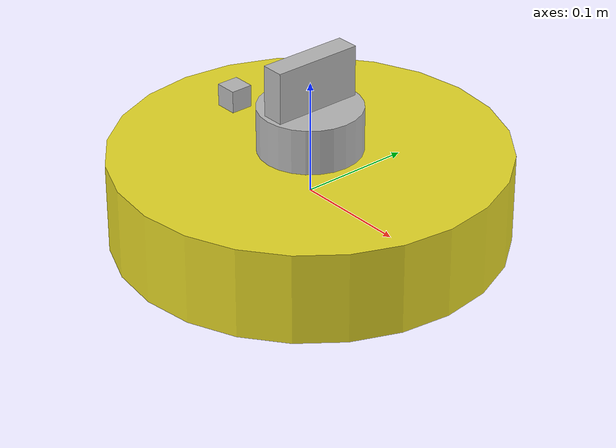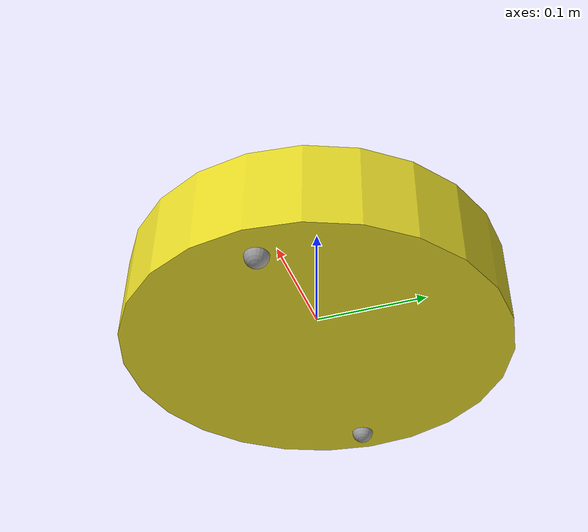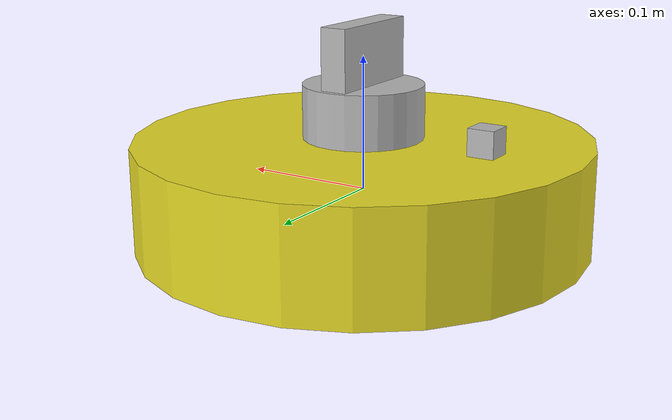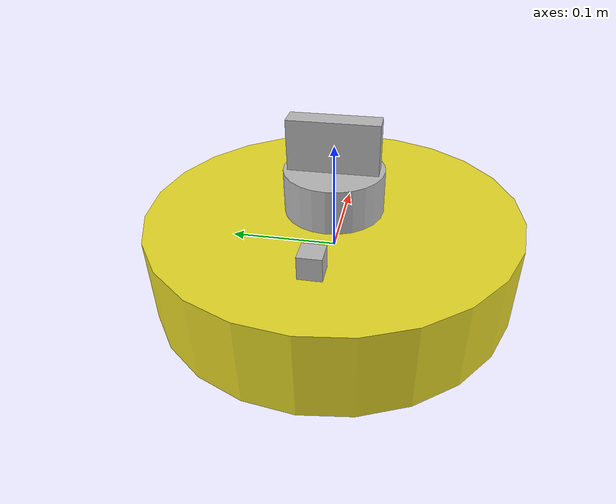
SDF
<sdf version='1.7'>
  <model name='iRobot'>
    <link name='base_link'>
      <inertial>
        <pose>-1e-05 0 6e-06 0 -0 0</pose>
        <mass>10.0031</mass>
        <inertia>
          <ixx>0.0802549</ixx>
          <ixy>0</ixy>
          <ixz>4.99939e-06</ixz>
          <iyy>0.0802648</iyy>
          <iyz>-1.94753e-23</iyz>
          <izz>0.144511</izz>
        </inertia>
      </inertial>
      <collision name='base_link_fixed_joint_lump__chassis_collision'>
        <pose>0 0 0 0 -0 0</pose>
        <geometry>
          <cylinder>
            <length>0.08</length>
            <radius>0.17</radius>
          </cylinder>
        </geometry>
        <surface>
          <contact>
            <ode/>
          </contact>
          <friction>
            <ode/>
          </friction>
        </surface>
      </collision>
      <collision name='base_link_fixed_joint_lump__left_axis_collision_1'>
        <pose>0 0 0 -1.5708 0 0</pose>
        <geometry>
          <cylinder>
            <length>0.02</length>
            <radius>0.0025</radius>
          </cylinder>
        </geometry>
      </collision>
      <collision name='base_link_fixed_joint_lump__right_axis_collision_2'>
        <pose>0 0 0 -1.5708 0 0</pose>
        <geometry>
          <cylinder>
            <length>0.02</length>
            <radius>0.0025</radius>
          </cylinder>
        </geometry>
      </collision>
      <collision name='base_link_fixed_joint_lump__camera_link_collision_3'>
        <pose>0 0 0.1 0 -0 0</pose>
        <geometry>
          <box>
            <size>0.02 0.08 0.05</size>
          </box>
        </geometry>
        <surface>
          <contact>
            <ode/>
          </contact>
          <friction>
            <ode/>
          </friction>
        </surface>
      </collision>
      <collision name='base_link_fixed_joint_lump__hokuyo_laser_link_collision_4'>
        <pose>0 0 0.06 0 -0 0</pose>
        <geometry>
          <cylinder>
            <length>0.04</length>
            <radius>0.045</radius>
          </cylinder>
        </geometry>
        <surface>
          <contact>
            <ode/>
          </contact>
          <friction>
            <ode/>
          </friction>
        </surface>
      </collision>
      <collision name='base_link_fixed_joint_lump__imu_sensor_link_collision_5'>
        <pose>-0.1 0 0.05 0 -0 0</pose>
        <geometry>
          <box>
            <size>0.02 0.02 0.02</size>
          </box>
        </geometry>
        <surface>
          <contact>
            <ode/>
          </contact>
          <friction>
            <ode/>
          </friction>
        </surface>
      </collision>
      <visual name='base_link_fixed_joint_lump__chassis_visual'>
        <pose>0 0 0 0 -0 0</pose>
        <geometry>
          <cylinder>
            <length>0.08</length>
            <radius>0.17</radius>
          </cylinder>
        </geometry>
        <material>
          <script>
            <name>Gazebo/Yellow</name>
            <uri>file://media/materials/scripts/gazebo.material</uri>
          </script>
        </material>
      </visual>
      <visual name='base_link_fixed_joint_lump__left_axis_visual_1'>
        <pose>0 0 0 -1.5708 0 0</pose>
        <geometry>
          <cylinder>
            <length>0.02</length>
            <radius>0.0025</radius>
          </cylinder>
        </geometry>
      </visual>
      <visual name='base_link_fixed_joint_lump__right_axis_visual_2'>
        <pose>0 0 0 -1.5708 0 0</pose>
        <geometry>
          <cylinder>
            <length>0.02</length>
            <radius>0.0025</radius>
          </cylinder>
        </geometry>
      </visual>
      <visual name='base_link_fixed_joint_lump__camera_link_visual_3'>
        <pose>0 0 0.1 0 -0 0</pose>
        <geometry>
          <box>
            <size>0.02 0.08 0.05</size>
          </box>
        </geometry>
      </visual>
      <visual name='base_link_fixed_joint_lump__hokuyo_laser_link_visual_4'>
        <pose>0 0 0.06 0 -0 0</pose>
        <geometry>
          <cylinder>
            <length>0.04</length>
            <radius>0.045</radius>
          </cylinder>
        </geometry>
      </visual>
      <visual name='base_link_fixed_joint_lump__imu_sensor_link_visual_5'>
        <pose>-0.1 0 0.05 0 -0 0</pose>
        <geometry>
          <box>
            <size>0.02 0.02 0.02</size>
          </box>
        </geometry>
      </visual>
      <gravity>1</gravity>
      <sensor name='camera' type='camera'>
        <update_rate>30</update_rate>
        <camera name='head'>
          <horizontal_fov>1.39626</horizontal_fov>
          <image>
            <width>800</width>
            <height>600</height>
            <format>R8G8B8</format>
          </image>
          <clip>
            <near>0.02</near>
            <far>300</far>
          </clip>
          <noise>
            <type>gaussian</type>
            <mean>0</mean>
            <stddev>0.007</stddev>
          </noise>
        </camera>
        <plugin name='camera_controller' filename='libgazebo_ros_camera.so'>
          <alwaysOn>1</alwaysOn>
          <updateRate>0.0</updateRate>
          <cameraName>iRobot/camera</cameraName>
          <imageTopicName>image_raw</imageTopicName>
          <cameraInfoTopicName>camera_info</cameraInfoTopicName>
          <frameName>camera_link</frameName>
          <hackBaseline>0.07</hackBaseline>
          <distortionK1>0.0</distortionK1>
          <distortionK2>0.0</distortionK2>
          <distortionK3>0.0</distortionK3>
          <distortionT1>0.0</distortionT1>
          <distortionT2>0.0</distortionT2>
        </plugin>
        <pose>0 0 0.1 0 -0 0</pose>
      </sensor>
      <gravity>1</gravity>
      <sensor name='head_hokuyo_sensor' type='ray'>
        <visualize>1</visualize>
        <update_rate>40</update_rate>
        <ray>
          <scan>
            <horizontal>
              <samples>360</samples>
              <resolution>1</resolution>
              <min_angle>-3.14159</min_angle>
              <max_angle>3.14159</max_angle>
            </horizontal>
          </scan>
          <range>
            <min>0.2</min>
            <max>40</max>
            <resolution>0.025</resolution>
          </range>
          <noise>
            <type>gaussian</type>
            <mean>0</mean>
            <stddev>0</stddev>
          </noise>
        </ray>
        <plugin name='gazebo_ros_head_hokuyo_controller' filename='libgazebo_ros_laser.so'>
          <robotNamespace/>
          <topicName>laser_scan</topicName>
          <frameName>hokuyo_laser_link</frameName>
        </plugin>
        <pose>0 0 0.06 0 -0 0</pose>
      </sensor>
      <gravity>1</gravity>
      <sensor name='imu_sensor' type='imu'>
        <always_on>1</always_on>
        <update_rate>1000</update_rate>
        <visualize>1</visualize>
        <topic>__default_topic__</topic>
        <plugin name='imu_plugin' filename='libgazebo_ros_imu_sensor.so'>
          <topicName>imu_data</topicName>
          <bodyName>imu_sensor_link</bodyName>
          <updateRateHZ>10.0</updateRateHZ>
          <gaussianNoise>0.0</gaussianNoise>
          <xyzOffset>0 0 0</xyzOffset>
          <rpyOffset>0 0 0</rpyOffset>
        </plugin>
        <pose>-0.1 0 0.05 0 -0 0</pose>
      </sensor>
    </link>
    <joint name='left_wheel_rot_joint' type='revolute'>
      <pose relative_to='base_link'>0 0 0 0 -0 0</pose>
      <parent>base_link</parent>
      <child>left_wheel_link</child>
      <axis>
        <xyz>0 1 0</xyz>
        <limit>
          <effort>100</effort>
          <velocity>100</velocity>
          <lower>-1e+16</lower>
          <upper>1e+16</upper>
        </limit>
        <dynamics>
          <spring_reference>0</spring_reference>
          <spring_stiffness>0</spring_stiffness>
        </dynamics>
      </axis>
    </joint>
    <link name='left_wheel_link'>
      <pose relative_to='left_wheel_rot_joint'>0 0 0 0 -0 0</pose>
      <inertial>
        <pose>0 0.01 0 -1.5708 0 0</pose>
        <mass>0.5</mass>
        <inertia>
          <ixx>0.000129167</ixx>
          <ixy>0</ixy>
          <ixz>0</ixz>
          <iyy>0.000129167</iyy>
          <iyz>0</iyz>
          <izz>3.75e-05</izz>
        </inertia>
      </inertial>
      <collision name='left_wheel_link_collision'>
        <pose>0 0 0 -1.5708 0 0</pose>
        <geometry>
          <cylinder>
            <length>0.02</length>
            <radius>0.03</radius>
          </cylinder>
        </geometry>
        <surface>
          <contact>
            <ode>
              <kp>1e+07</kp>
              <kd>1</kd>
              <min_depth>0.0001</min_depth>
            </ode>
          </contact>
          <friction>
            <ode>
              <mu>50</mu>
              <mu2>10</mu2>
              <fdir1>1 0 0</fdir1>
            </ode>
          </friction>
        </surface>
        <max_contacts>1</max_contacts>
      </collision>
      <visual name='left_wheel_link_visual'>
        <pose>0 0 0 -1.5708 0 0</pose>
        <geometry>
          <cylinder>
            <length>0.02</length>
            <radius>0.03</radius>
          </cylinder>
        </geometry>
        <material>
          <script>
            <name>Gazebo/Grey</name>
            <uri>file://media/materials/scripts/gazebo.material</uri>
          </script>
        </material>
      </visual>
      <gravity>1</gravity>
    </link>
    <joint name='right_wheel_rot_joint' type='revolute'>
      <pose relative_to='base_link'>0 0 0 0 -0 0</pose>
      <parent>base_link</parent>
      <child>right_wheel_link</child>
      <axis>
        <xyz>0 1 0</xyz>
        <limit>
          <effort>100</effort>
          <velocity>100</velocity>
          <lower>-1e+16</lower>
          <upper>1e+16</upper>
        </limit>
        <dynamics>
          <spring_reference>0</spring_reference>
          <spring_stiffness>0</spring_stiffness>
        </dynamics>
      </axis>
    </joint>
    <link name='right_wheel_link'>
      <pose relative_to='right_wheel_rot_joint'>0 0 0 0 -0 0</pose>
      <inertial>
        <pose>0 0.01 0 -1.5708 0 0</pose>
        <mass>0.5</mass>
        <inertia>
          <ixx>0.000129167</ixx>
          <ixy>0</ixy>
          <ixz>0</ixz>
          <iyy>0.000129167</iyy>
          <iyz>0</iyz>
          <izz>3.75e-05</izz>
        </inertia>
      </inertial>
      <collision name='right_wheel_link_collision'>
        <pose>0 0 0 -1.5708 0 0</pose>
        <geometry>
          <cylinder>
            <length>0.02</length>
            <radius>0.03</radius>
          </cylinder>
        </geometry>
        <surface>
          <contact>
            <ode>
              <kp>1e+07</kp>
              <kd>1</kd>
              <min_depth>0.0001</min_depth>
            </ode>
          </contact>
          <friction>
            <ode>
              <mu>50</mu>
              <mu2>10</mu2>
              <fdir1>1 0 0</fdir1>
            </ode>
          </friction>
        </surface>
        <max_contacts>1</max_contacts>
      </collision>
      <visual name='right_wheel_link_visual'>
        <pose>0 0 0 -1.5708 0 0</pose>
        <geometry>
          <cylinder>
            <length>0.02</length>
            <radius>0.03</radius>
          </cylinder>
        </geometry>
        <material>
          <script>
            <name>Gazebo/Grey</name>
            <uri>file://media/materials/scripts/gazebo.material</uri>
          </script>
        </material>
      </visual>
      <gravity>1</gravity>
    </link>
    <joint name='sphere_joint1' type='revolute'>
      <pose relative_to='base_link'>0.14 0 -0.04 0 -0 0</pose>
      <parent>base_link</parent>
      <child>sphere1</child>
      <axis>
        <xyz>0 0 1</xyz>
        <limit>
          <lower>0</lower>
          <upper>0</upper>
          <effort>100</effort>
          <velocity>100</velocity>
        </limit>
        <dynamics>
          <spring_reference>0</spring_reference>
          <spring_stiffness>0</spring_stiffness>
        </dynamics>
      </axis>
    </joint>
    <link name='sphere1'>
      <pose relative_to='sphere_joint1'>0 0 0 0 -0 0</pose>
      <inertial>
        <pose>0 0 0 0 -0 0</pose>
        <mass>0.3</mass>
        <inertia>
          <ixx>1.2e-05</ixx>
          <ixy>0</ixy>
          <ixz>0</ixz>
          <iyy>1.2e-05</iyy>
          <iyz>0</iyz>
          <izz>1.2e-05</izz>
        </inertia>
      </inertial>
      <collision name='sphere1_collision'>
        <pose>0 0 0 0 -0 0</pose>
        <geometry>
          <sphere>
            <radius>0.01</radius>
          </sphere>
        </geometry>
        <surface>
          <contact>
            <ode>
              <kp>1e+07</kp>
              <kd>1</kd>
              <min_depth>0.0001</min_depth>
            </ode>
          </contact>
          <friction>
            <ode>
              <mu>0</mu>
              <mu2>0</mu2>
              <fdir1>1 0 0</fdir1>
            </ode>
          </friction>
        </surface>
        <max_contacts>1</max_contacts>
      </collision>
      <visual name='sphere1_visual'>
        <pose>0 0 0 0 -0 0</pose>
        <geometry>
          <sphere>
            <radius>0.01</radius>
          </sphere>
        </geometry>
        <material>
          <script>
            <name>Gazebo/Grey</name>
            <uri>file://media/materials/scripts/gazebo.material</uri>
          </script>
        </material>
      </visual>
      <gravity>1</gravity>
    </link>
    <joint name='sphere_joint2' type='revolute'>
      <pose relative_to='base_link'>-0.14 0 -0.04 0 -0 0</pose>
      <parent>base_link</parent>
      <child>sphere2</child>
      <axis>
        <xyz>0 0 1</xyz>
        <limit>
          <lower>0</lower>
          <upper>0</upper>
          <effort>100</effort>
          <velocity>100</velocity>
        </limit>
        <dynamics>
          <spring_reference>0</spring_reference>
          <spring_stiffness>0</spring_stiffness>
        </dynamics>
      </axis>
    </joint>
    <link name='sphere2'>
      <pose relative_to='sphere_joint2'>0 0 0 0 -0 0</pose>
      <inertial>
        <pose>0 0 0 0 -0 0</pose>
        <mass>0.3</mass>
        <inertia>
          <ixx>1.2e-05</ixx>
          <ixy>0</ixy>
          <ixz>0</ixz>
          <iyy>1.2e-05</iyy>
          <iyz>0</iyz>
          <izz>1.2e-05</izz>
        </inertia>
      </inertial>
      <collision name='sphere2_collision'>
        <pose>0 0 0 0 -0 0</pose>
        <geometry>
          <sphere>
            <radius>0.01</radius>
          </sphere>
        </geometry>
        <surface>
          <contact>
            <ode>
              <kp>1e+07</kp>
              <kd>1</kd>
              <min_depth>0.0001</min_depth>
            </ode>
          </contact>
          <friction>
            <ode>
              <mu>0</mu>
              <mu2>0</mu2>
              <fdir1>1 0 0</fdir1>
            </ode>
          </friction>
        </surface>
        <max_contacts>1</max_contacts>
      </collision>
      <visual name='sphere2_visual'>
        <pose>0 0 0 0 -0 0</pose>
        <geometry>
          <sphere>
            <radius>0.01</radius>
          </sphere>
        </geometry>
        <material>
          <script>
            <name>Gazebo/Grey</name>
            <uri>file://media/materials/scripts/gazebo.material</uri>
          </script>
        </material>
      </visual>
      <gravity>1</gravity>
    </link>
    <static>0</static>
    <plugin name='differential_drive_controller' filename='libgazebo_ros_diff_drive.so'>
      <rosDebugLevel>Debug</rosDebugLevel>
      <publishWheelTF>0</publishWheelTF>
      <publishWheelJointState>1</publishWheelJointState>
      <alwaysOn>1</alwaysOn>
      <leftJoint>left_wheel_rot_joint</leftJoint>
      <rightJoint>right_wheel_rot_joint</rightJoint>
      <wheelSeparation>0.28</wheelSeparation>
      <wheelDiameter>0.06</wheelDiameter>
      <torque>20</torque>
      <wheelAcceleration>1.8</wheelAcceleration>
      <commandTopic>cmd_vel</commandTopic>
      <odometryTopic>odom</odometryTopic>
      <odometryFrame>odom</odometryFrame>
      <odometrySource>encoder</odometrySource>
      <robotBaseFrame>base_link</robotBaseFrame>
      <updateRate>10.0</updateRate>
    </plugin>
    <plugin name='joint_state_publisher' filename='libgazebo_ros_joint_state_publisher.so'>
      <jointName>left_wheel_rot_joint, right_wheel_rot_joint</jointName>
      <updateRate>10.0</updateRate>
      <alwaysOn>1</alwaysOn>
    </plugin>
    <plugin name='imu_plugin' filename='libgazebo_ros_imu.so'>
      <bodyName>base_link</bodyName>
      <updateRate>100.0</updateRate>
      <topicName>imu_data</topicName>
      <serviceName>imu_service</serviceName>
      <gaussianNoise>0.1</gaussianNoise>
      <xyzOffset>0 0 0</xyzOffset>
      <rpyOffset>0 0 0</rpyOffset>
    </plugin>
    <frame name='left_axis_base_joint' attached_to='chassis'>
      <pose>0 0 0 0 -0 0</pose>
    </frame>
    <frame name='left_axis' attached_to='left_axis_base_joint'/>
    <frame name='right_axis_base_joint' attached_to='chassis'>
      <pose>0 0 0 0 -0 0</pose>
    </frame>
    <frame name='right_axis' attached_to='right_axis_base_joint'/>
    <frame name='base_joint' attached_to='base_link'>
      <pose>0 0 0 0 -0 0</pose>
    </frame>
    <frame name='chassis' attached_to='base_joint'/>
    <frame name='camera_sensor_joint' attached_to='base_link'>
      <pose>0 0 0.1 0 -0 0</pose>
    </frame>
    <frame name='camera_link' attached_to='camera_sensor_joint'/>
    <frame name='hokuyo_laser_joint' attached_to='base_link'>
      <pose>0 0 0.06 0 -0 0</pose>
    </frame>
    <frame name='hokuyo_laser_link' attached_to='hokuyo_laser_joint'/>
    <frame name='imu_sensor_joint' attached_to='base_link'>
      <pose>-0.1 0 0.05 0 -0 0</pose>
    </frame>
    <frame name='imu_sensor_link' attached_to='imu_sensor_joint'/>
  </model>
</sdf>
